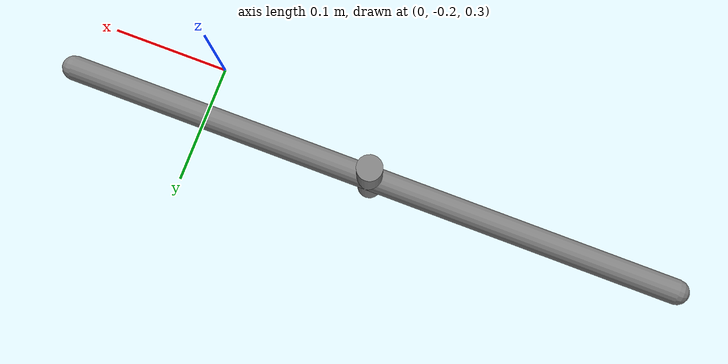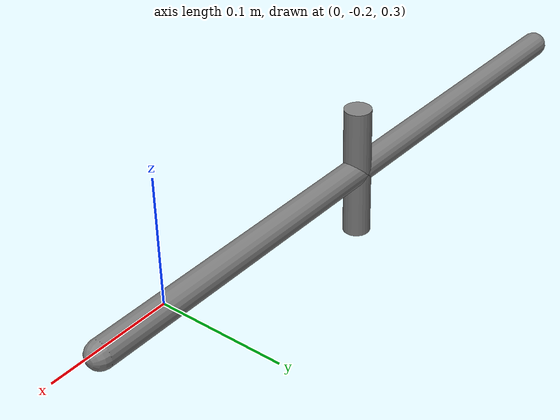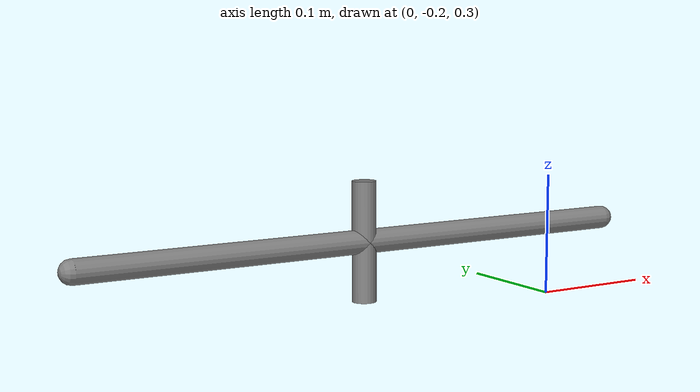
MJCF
<mujoco>
  <worldbody>
    <body pos="-.15 -.15 .3">
      <joint name="hinge1" type="hinge" axis="0 0 1" limited="true" range="-75 75" />
      <geom type="cylinder" size=".01" fromto="0 0 0 0 0 .1"/>
      <body pos="0 0 .05">
        <geom type="capsule" size=".01" fromto="-.25 0 0 .25 0 0"/>
        <joint name="hinge2" type="hinge" axis="0 1 0" damping=".5" limited="true" range="-15 15" />
      </body>
    </body>
  </worldbody>

  <actuator>
    <general joint="hinge1" biasprm="0" biastype="affine" ctrlrange="-.003 .003" ctrllimited="true" />
    <general joint="hinge2" biasprm="0" biastype="affine" ctrlrange="-.3 .3" ctrllimited="true" />
  </actuator>
</mujoco>
